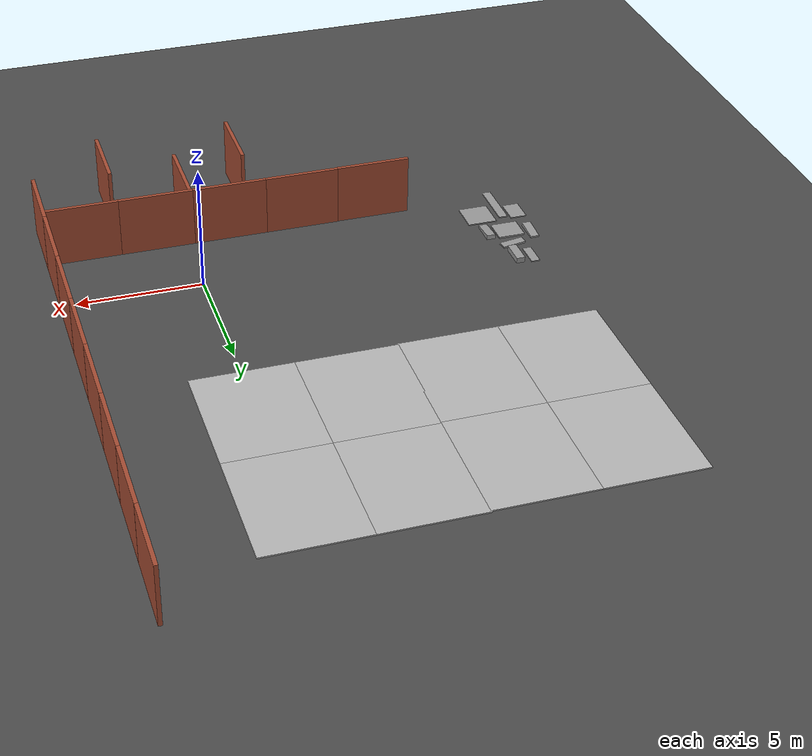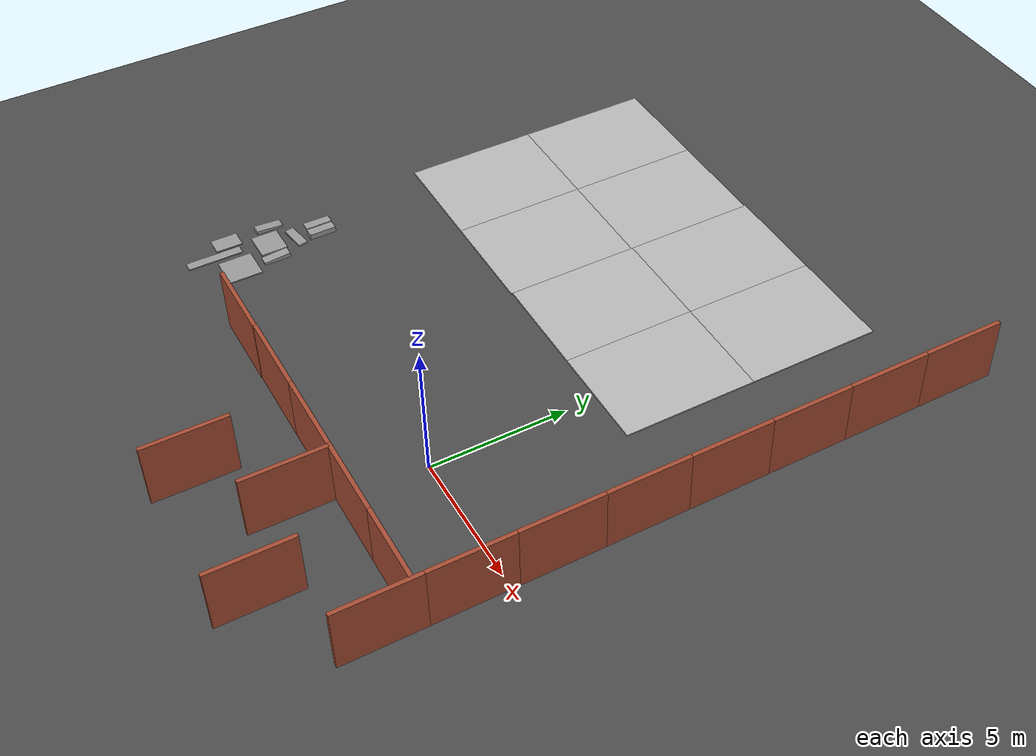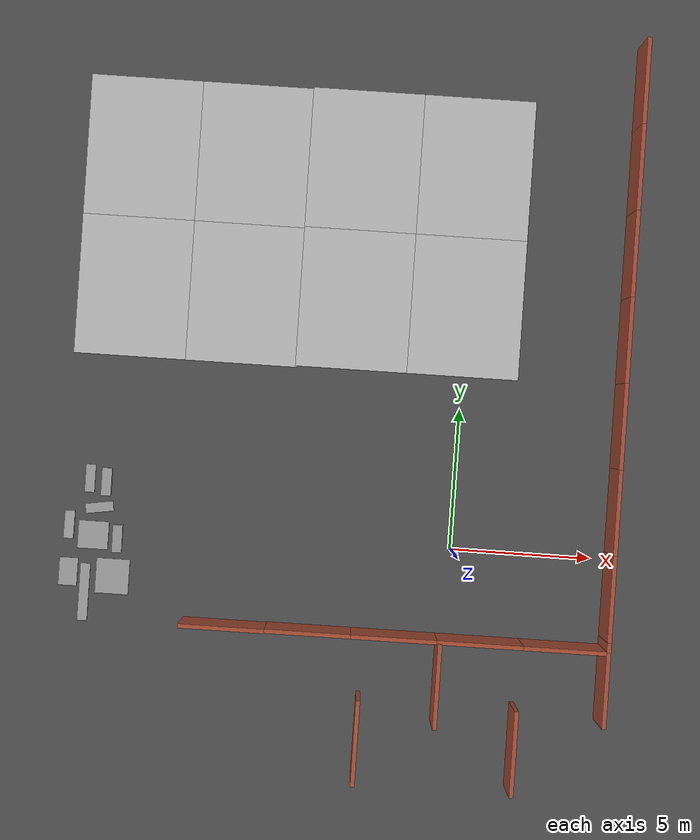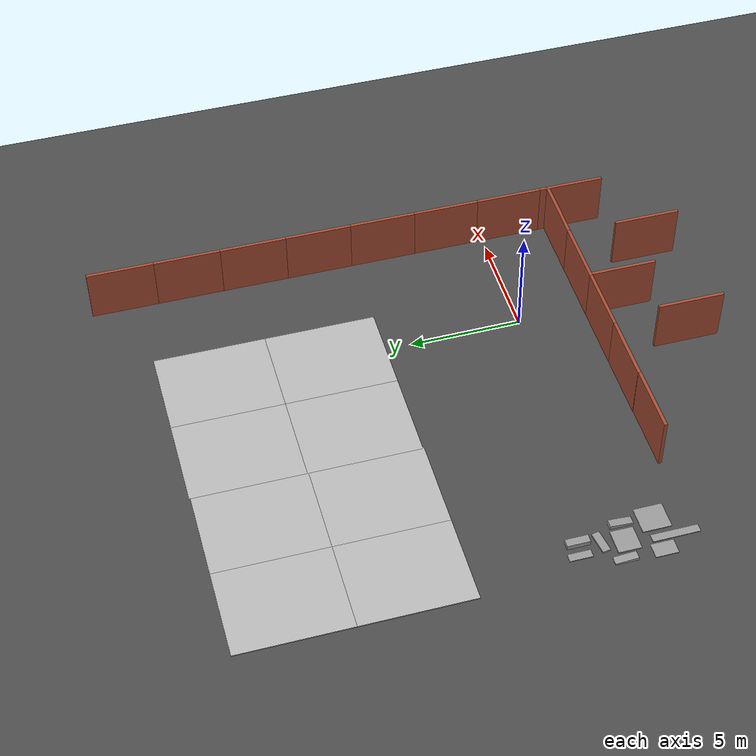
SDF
<sdf version="1.7">
 <world name="default">
  <scene>
   <sky><clouds><speed>5</speed></clouds></sky>
   <ambient>0.4 0.4 0.4 1</ambient>
   <background>0.7 0.7 0.7 1</background>
   <shadows>1</shadows>
  </scene>
  <light name="sun" type="directional">
   <pose>0 0 10 0 -0 0</pose>
   <diffuse>0.8 0.8 0.8 1</diffuse>
   <specular>0.2 0.2 0.2 1</specular>
   <attenuation>
    <range>1000</range>
    <constant>0.9</constant>
    <linear>0.01</linear>
    <quadratic>0.001</quadratic>
   </attenuation>
   <direction>-0.5 0.1 -0.9</direction>
   <spot><inner_angle>0</inner_angle><outer_angle>0</outer_angle><falloff>0</falloff></spot>
  </light>
  <model name="ground_plane">
   <static>1</static>
   <link name="link">
    <collision name="collision">
     <geometry><plane><normal>0 0 1</normal><size>100 100</size></plane></geometry>
     <surface><friction><ode><mu>100</mu><mu2>50</mu2></ode></friction></surface>
    </collision>
    <visual name="visual">
     <cast_shadows>0</cast_shadows>
     <geometry><plane><normal>0 0 1</normal><size>100 100</size></plane></geometry>
     <material>
      <script><uri>file://media/materials/scripts/gazebo.material</uri><name>Gazebo/Grey</name></script>
     </material>
    </visual>
   </link>
  </model>
  <gravity>0 0 -9.8</gravity>
  <magnetic_field>6e-06 2.3e-05 -4.2e-05</magnetic_field>
  <atmosphere type="adiabatic"/>
  <physics name="default_physics" default="0" type="ode">
   <max_step_size>0.01</max_step_size>
   <real_time_factor>1</real_time_factor>
   <real_time_update_rate>100</real_time_update_rate>
  </physics>
  <scene><ambient>0.4 0.4 0.4 1</ambient><background>0.7 0.7 0.7 1</background><shadows>1</shadows></scene>
  <spherical_coordinates>
   <surface_model>EARTH_WGS84</surface_model>
   <latitude_deg>0</latitude_deg>
   <longitude_deg>0</longitude_deg>
   <elevation>0</elevation>
   <heading_deg>0</heading_deg>
  </spherical_coordinates>
  <model name="wall_brick_3m">
   <pose>2.53536 -6.79833 0 0 -0 1.57</pose>
   <link name="Wall_2">
    <collision name="Wall_2_Collision">
     <geometry><box><size>3 0.15 2.5</size></box></geometry>
     <pose>0 0 1.25 0 -0 0</pose>
    </collision>
    <visual name="Wall_2_Visual">
     <pose>0 0 1.25 0 -0 0</pose>
     <geometry><box><size>3 0.15 2.5</size></box></geometry>
     <material>
      <script><uri>file://media/materials/scripts/gazebo.material</uri><name>Gazebo/Bricks</name></script>
      <ambient>1 1 1 1</ambient>
     </material>
     <meta><layer>0</layer></meta>
    </visual>
   </link>
   <static>1</static>
  </model>
  <model name="wall_brick_3m_clone">
   <pose>-0.265232 -4.62667 0 0 -0 1.57</pose>
   <link name="Wall_2">
    <collision name="Wall_2_Collision">
     <geometry><box><size>3 0.15 2.5</size></box></geometry>
     <pose>0 0 1.25 0 -0 0</pose>
    </collision>
    <visual name="Wall_2_Visual">
     <pose>0 0 1.25 0 -0 0</pose>
     <geometry><box><size>3 0.15 2.5</size></box></geometry>
     <material>
      <script><uri>file://media/materials/scripts/gazebo.material</uri><name>Gazebo/Bricks</name></script>
      <ambient>1 1 1 1</ambient>
     </material>
     <meta><layer>0</layer></meta>
    </visual>
   </link>
   <static>1</static>
  </model>
  <model name="wall_brick_3m_clone_clone">
   <pose>-2.96784 -6.78032 0 0 -0 1.57</pose>
   <link name="Wall_2">
    <collision name="Wall_2_Collision">
     <geometry><box><size>3 0.15 2.5</size></box></geometry>
     <pose>0 0 1.25 0 -0 0</pose>
    </collision>
    <visual name="Wall_2_Visual">
     <pose>0 0 1.25 0 -0 0</pose>
     <geometry><box><size>3 0.15 2.5</size></box></geometry>
     <material>
      <script><uri>file://media/materials/scripts/gazebo.material</uri><name>Gazebo/Bricks</name></script>
      <ambient>1 1 1 1</ambient>
     </material>
     <meta><layer>0</layer></meta>
    </visual>
   </link>
   <static>1</static>
  </model>
  <model name="wall_brick_3m_clone_0">
   <pose>5.57817 -4.2114 0 0 -0 1.57</pose>
   <link name="Wall_2">
    <collision name="Wall_2_Collision">
     <geometry><box><size>3 0.15 2.5</size></box></geometry>
     <pose>0 0 1.25 0 -0 0</pose>
    </collision>
    <visual name="Wall_2_Visual">
     <pose>0 0 1.25 0 -0 0</pose>
     <geometry><box><size>3 0.15 2.5</size></box></geometry>
     <material>
      <script><uri>file://media/materials/scripts/gazebo.material</uri><name>Gazebo/Bricks</name></script>
      <ambient>1 1 1 1</ambient>
     </material>
     <meta><layer>0</layer></meta>
    </visual>
   </link>
   <static>1</static>
  </model>
  <model name="wall_brick_3m_clone_1">
   <pose>4.12513 -3.1 0 0 -0 0</pose>
   <link name="Wall_2">
    <collision name="Wall_2_Collision">
     <geometry><box><size>3 0.15 2.5</size></box></geometry>
     <pose>0 0 1.25 0 -0 0</pose>
    </collision>
    <visual name="Wall_2_Visual">
     <pose>0 0 1.25 0 -0 0</pose>
     <geometry><box><size>3 0.15 2.5</size></box></geometry>
     <material>
      <script><uri>file://media/materials/scripts/gazebo.material</uri><name>Gazebo/Bricks</name></script>
      <ambient>1 1 1 1</ambient>
     </material>
     <meta><layer>0</layer></meta>
    </visual>
   </link>
   <static>1</static>
  </model>
  <model name="wall_brick_3m_clone_1_clone">
   <pose>1.12513 -3.1 0 0 -0 0</pose>
   <link name="Wall_2">
    <collision name="Wall_2_Collision">
     <geometry><box><size>3 0.15 2.5</size></box></geometry>
     <pose>0 0 1.25 0 -0 0</pose>
    </collision>
    <visual name="Wall_2_Visual">
     <pose>0 0 1.25 0 -0 0</pose>
     <geometry><box><size>3 0.15 2.5</size></box></geometry>
     <material>
      <script><uri>file://media/materials/scripts/gazebo.material</uri><name>Gazebo/Bricks</name></script>
      <ambient>1 1 1 1</ambient>
     </material>
     <meta><layer>0</layer></meta>
    </visual>
   </link>
   <static>1</static>
  </model>
  <model name="wall_brick_3m_clone_1_clone_0">
   <pose>-1.87487 -3.1 0 0 -0 0</pose>
   <link name="Wall_2">
    <collision name="Wall_2_Collision">
     <geometry><box><size>3 0.15 2.5</size></box></geometry>
     <pose>0 0 1.25 0 -0 0</pose>
    </collision>
    <visual name="Wall_2_Visual">
     <pose>0 0 1.25 0 -0 0</pose>
     <geometry><box><size>3 0.15 2.5</size></box></geometry>
     <material>
      <script><uri>file://media/materials/scripts/gazebo.material</uri><name>Gazebo/Bricks</name></script>
      <ambient>1 1 1 1</ambient>
     </material>
     <meta><layer>0</layer></meta>
    </visual>
   </link>
   <static>1</static>
  </model>
  <model name="wall_brick_3m_clone_1_clone_1">
   <pose>-4.87487 -3.1 0 0 -0 0</pose>
   <link name="Wall_2">
    <collision name="Wall_2_Collision">
     <geometry><box><size>3 0.15 2.5</size></box></geometry>
     <pose>0 0 1.25 0 -0 0</pose>
    </collision>
    <visual name="Wall_2_Visual">
     <pose>0 0 1.25 0 -0 0</pose>
     <geometry><box><size>3 0.15 2.5</size></box></geometry>
     <material>
      <script><uri>file://media/materials/scripts/gazebo.material</uri><name>Gazebo/Bricks</name></script>
      <ambient>1 1 1 1</ambient>
     </material>
     <meta><layer>0</layer></meta>
    </visual>
   </link>
   <static>1</static>
  </model>
  <model name="wall_brick_3m_clone_1_clone_1_clone">
   <pose>-7.87487 -3.11682 0 0 -0 0</pose>
   <link name="Wall_2">
    <collision name="Wall_2_Collision">
     <geometry><box><size>3 0.15 2.5</size></box></geometry>
     <pose>0 0 1.25 0 -0 0</pose>
    </collision>
    <visual name="Wall_2_Visual">
     <pose>0 0 1.25 0 -0 0</pose>
     <geometry><box><size>3 0.15 2.5</size></box></geometry>
     <material>
      <script><uri>file://media/materials/scripts/gazebo.material</uri><name>Gazebo/Bricks</name></script>
      <ambient>1 1 1 1</ambient>
     </material>
     <meta><layer>0</layer></meta>
    </visual>
   </link>
   <static>1</static>
  </model>
  <model name="wall_brick_3m_clone_0_clone">
   <pose>5.57817 -1.21128 0 0 -0 1.57</pose>
   <link name="Wall_2">
    <collision name="Wall_2_Collision">
     <geometry><box><size>3 0.15 2.5</size></box></geometry>
     <pose>0 0 1.25 0 -0 0</pose>
    </collision>
    <visual name="Wall_2_Visual">
     <pose>0 0 1.25 0 -0 0</pose>
     <geometry><box><size>3 0.15 2.5</size></box></geometry>
     <material>
      <script><uri>file://media/materials/scripts/gazebo.material</uri><name>Gazebo/Bricks</name></script>
      <ambient>1 1 1 1</ambient>
     </material>
     <meta><layer>0</layer></meta>
    </visual>
   </link>
   <static>1</static>
  </model>
  <model name="wall_brick_3m_clone_0_clone_clone">
   <pose>5.57817 1.78884 0 0 -0 1.57</pose>
   <link name="Wall_2">
    <collision name="Wall_2_Collision">
     <geometry><box><size>3 0.15 2.5</size></box></geometry>
     <pose>0 0 1.25 0 -0 0</pose>
    </collision>
    <visual name="Wall_2_Visual">
     <pose>0 0 1.25 0 -0 0</pose>
     <geometry><box><size>3 0.15 2.5</size></box></geometry>
     <material>
      <script><uri>file://media/materials/scripts/gazebo.material</uri><name>Gazebo/Bricks</name></script>
      <ambient>1 1 1 1</ambient>
     </material>
     <meta><layer>0</layer></meta>
    </visual>
   </link>
   <static>1</static>
  </model>
  <model name="wall_brick_3m_clone_0_clone_clone_0">
   <pose>5.57817 4.78896 0 0 -0 1.57</pose>
   <link name="Wall_2">
    <collision name="Wall_2_Collision">
     <geometry><box><size>3 0.15 2.5</size></box></geometry>
     <pose>0 0 1.25 0 -0 0</pose>
    </collision>
    <visual name="Wall_2_Visual">
     <pose>0 0 1.25 0 -0 0</pose>
     <geometry><box><size>3 0.15 2.5</size></box></geometry>
     <material>
      <script><uri>file://media/materials/scripts/gazebo.material</uri><name>Gazebo/Bricks</name></script>
      <ambient>1 1 1 1</ambient>
     </material>
     <meta><layer>0</layer></meta>
    </visual>
   </link>
   <static>1</static>
  </model>
  <model name="wall_brick_3m_clone_0_clone_clone_0_clone">
   <pose>5.57817 7.78908 0 0 -0 1.57</pose>
   <link name="Wall_2">
    <collision name="Wall_2_Collision">
     <geometry><box><size>3 0.15 2.5</size></box></geometry>
     <pose>0 0 1.25 0 -0 0</pose>
    </collision>
    <visual name="Wall_2_Visual">
     <pose>0 0 1.25 0 -0 0</pose>
     <geometry><box><size>3 0.15 2.5</size></box></geometry>
     <material>
      <script><uri>file://media/materials/scripts/gazebo.material</uri><name>Gazebo/Bricks</name></script>
      <ambient>1 1 1 1</ambient>
     </material>
     <meta><layer>0</layer></meta>
    </visual>
   </link>
   <static>1</static>
  </model>
  <model name="wall_brick_3m_clone_0_clone_clone_0_clone_clone">
   <pose>5.57817 10.7892 0 0 -0 1.57</pose>
   <link name="Wall_2">
    <collision name="Wall_2_Collision">
     <geometry><box><size>3 0.15 2.5</size></box></geometry>
     <pose>0 0 1.25 0 -0 0</pose>
    </collision>
    <visual name="Wall_2_Visual">
     <pose>0 0 1.25 0 -0 0</pose>
     <geometry><box><size>3 0.15 2.5</size></box></geometry>
     <material>
      <script><uri>file://media/materials/scripts/gazebo.material</uri><name>Gazebo/Bricks</name></script>
      <ambient>1 1 1 1</ambient>
     </material>
     <meta><layer>0</layer></meta>
    </visual>
   </link>
   <static>1</static>
  </model>
  <model name="wall_brick_3m_clone_0_clone_clone_0_clone_clone_0">
   <pose>5.57817 13.7893 0 0 -0 1.57</pose>
   <link name="Wall_2">
    <collision name="Wall_2_Collision">
     <geometry><box><size>3 0.15 2.5</size></box></geometry>
     <pose>0 0 1.25 0 -0 0</pose>
    </collision>
    <visual name="Wall_2_Visual">
     <pose>0 0 1.25 0 -0 0</pose>
     <geometry><box><size>3 0.15 2.5</size></box></geometry>
     <material>
      <script><uri>file://media/materials/scripts/gazebo.material</uri><name>Gazebo/Bricks</name></script>
      <ambient>1 1 1 1</ambient>
     </material>
     <meta><layer>0</layer></meta>
    </visual>
   </link>
   <static>1</static>
  </model>
  <model name="wall_brick_3m_clone_0_clone_clone_0_clone_clone_0_clone">
   <pose>5.57817 16.7894 0 0 -0 1.57</pose>
   <link name="Wall_2">
    <collision name="Wall_2_Collision">
     <geometry><box><size>3 0.15 2.5</size></box></geometry>
     <pose>0 0 1.25 0 -0 0</pose>
    </collision>
    <visual name="Wall_2_Visual">
     <pose>0 0 1.25 0 -0 0</pose>
     <geometry><box><size>3 0.15 2.5</size></box></geometry>
     <material>
      <script><uri>file://media/materials/scripts/gazebo.material</uri><name>Gazebo/Bricks</name></script>
      <ambient>1 1 1 1</ambient>
     </material>
     <meta><layer>0</layer></meta>
    </visual>
   </link>
   <static>1</static>
  </model>
  <model name="asphalt_plane">
   <static>1</static>
   <link name="link">
    <collision name="collision"><geometry><box><size>98.0294 91.5637 0.1</size></box></geometry></collision>
    <visual name="visual">
     <cast_shadows>0</cast_shadows>
     <geometry><box><size>98.0294 91.5637 0.1</size></box></geometry>
     <material>
      <script>
       <uri>model://asphalt_plane/materials/scripts</uri>
       <uri>model://asphalt_plane/materials/textures</uri>
       <name>vrc/asphalt</name>
      </script>
     </material>
    </visual>
   </link>
   <pose>-4.33392 0.897286 0 0 -0 0</pose>
  </model>
  <model name="mud_box">
   <static>1</static>
   <link name="link">
    <collision name="collision"><geometry><box><size>8 10 0.2</size></box></geometry></collision>
    <visual name="visual_1">
     <pose>-2 2.5 0 0 -0 0</pose>
     <cast_shadows>0</cast_shadows>
     <geometry><box><size>4 5 0.2</size></box></geometry>
     <material>
      <script>
       <uri>model://mud_box/materials/scripts</uri>
       <uri>model://mud_box/materials/textures</uri>
       <name>vrc/mud</name>
      </script>
     </material>
    </visual>
    <visual name="visual_2">
     <pose>2 2.5 0 0 -0 0</pose>
     <cast_shadows>0</cast_shadows>
     <geometry><box><size>4 5 0.2</size></box></geometry>
     <material>
      <script>
       <uri>model://mud_box/materials/scripts</uri>
       <uri>model://mud_box/materials/textures</uri>
       <name>vrc/mud</name>
      </script>
     </material>
    </visual>
    <visual name="visual_3">
     <pose>2 -2.5 0 0 -0 0</pose>
     <cast_shadows>0</cast_shadows>
     <geometry><box><size>4 5 0.2</size></box></geometry>
     <material>
      <script>
       <uri>model://mud_box/materials/scripts</uri>
       <uri>model://mud_box/materials/textures</uri>
       <name>vrc/mud</name>
      </script>
     </material>
    </visual>
    <visual name="visual_4">
     <pose>-2 -2.5 0 0 -0 0</pose>
     <cast_shadows>0</cast_shadows>
     <geometry><box><size>4 5 0.2</size></box></geometry>
     <material>
      <script>
       <uri>model://mud_box/materials/scripts</uri>
       <uri>model://mud_box/materials/textures</uri>
       <name>vrc/mud</name>
      </script>
     </material>
    </visual>
   </link>
   <pose>-1.97889 11.186 0 0 -0 0</pose>
  </model>
  <model name="mud_box_clone">
   <static>1</static>
   <link name="link">
    <collision name="collision"><geometry><box><size>8 10 0.2</size></box></geometry></collision>
    <visual name="visual_1">
     <pose>-2 2.5 0 0 -0 0</pose>
     <cast_shadows>0</cast_shadows>
     <geometry><box><size>4 5 0.2</size></box></geometry>
     <material>
      <script>
       <uri>model://mud_box/materials/scripts</uri>
       <uri>model://mud_box/materials/textures</uri>
       <name>vrc/mud</name>
      </script>
     </material>
    </visual>
    <visual name="visual_2">
     <pose>2 2.5 0 0 -0 0</pose>
     <cast_shadows>0</cast_shadows>
     <geometry><box><size>4 5 0.2</size></box></geometry>
     <material>
      <script>
       <uri>model://mud_box/materials/scripts</uri>
       <uri>model://mud_box/materials/textures</uri>
       <name>vrc/mud</name>
      </script>
     </material>
    </visual>
    <visual name="visual_3">
     <pose>2 -2.5 0 0 -0 0</pose>
     <cast_shadows>0</cast_shadows>
     <geometry><box><size>4 5 0.2</size></box></geometry>
     <material>
      <script>
       <uri>model://mud_box/materials/scripts</uri>
       <uri>model://mud_box/materials/textures</uri>
       <name>vrc/mud</name>
      </script>
     </material>
    </visual>
    <visual name="visual_4">
     <pose>-2 -2.5 0 0 -0 0</pose>
     <cast_shadows>0</cast_shadows>
     <geometry><box><size>4 5 0.2</size></box></geometry>
     <material>
      <script>
       <uri>model://mud_box/materials/scripts</uri>
       <uri>model://mud_box/materials/textures</uri>
       <name>vrc/mud</name>
      </script>
     </material>
    </visual>
   </link>
   <pose>-9.92456 11.1339 0 0 -0 0</pose>
  </model>
  <model name="unit_box_clone_2">
   <link name="link">
    <inertial>
     <mass>1</mass>
     <inertia>
      <ixx>0.166667</ixx>
      <ixy>0</ixy>
      <ixz>0</ixz>
      <iyy>0.166667</iyy>
      <iyz>0</iyz>
      <izz>0.166667</izz>
     </inertia>
    </inertial>
    <visual name="visual">
     <geometry><box><size>0.35489 1 0.393854</size></box></geometry>
     <material>
      <script><name>Gazebo/Grey</name><uri>file://media/materials/scripts/gazebo.material</uri></script>
      <shader type="pixel"/>
     </material>
    </visual>
    <collision name="collision">
     <geometry><box><size>0.35489 1 0.393854</size></box></geometry>
     <surface>
      <friction>
       <ode><mu>1</mu><mu2>1</mu2><fdir1>0 0 0</fdir1><slip1>0</slip1><slip2>0</slip2></ode>
       <torsional>
        <coefficient>1</coefficient>
        <patch_radius>0</patch_radius>
        <surface_radius>0</surface_radius>
        <use_patch_radius>1</use_patch_radius>
        <ode><slip>0</slip></ode>
       </torsional>
      </friction>
      <bounce><restitution_coefficient>0</restitution_coefficient><threshold>1e+06</threshold></bounce>
      <contact>
       <collide_without_contact>0</collide_without_contact>
       <collide_without_contact_bitmask>1</collide_without_contact_bitmask>
       <collide_bitmask>1</collide_bitmask>
       <ode>
        <soft_cfm>0</soft_cfm>
        <soft_erp>0.2</soft_erp>
        <kp>1e+13</kp>
        <kd>1</kd>
        <max_vel>0.01</max_vel>
        <min_depth>0</min_depth>
       </ode>
       <bullet>
        <split_impulse>1</split_impulse>
        <split_impulse_penetration_threshold>-0.01</split_impulse_penetration_threshold>
        <soft_cfm>0</soft_cfm>
        <soft_erp>0.2</soft_erp>
        <kp>1e+13</kp>
        <kd>1</kd>
       </bullet>
      </contact>
     </surface>
    </collision>
   </link>
   <static>1</static>
   <pose>-12.4243 1.59397 0.075165 0 -0 0</pose>
  </model>
  <model name="unit_box_clone_2_clone_1">
   <link name="link">
    <inertial>
     <mass>1</mass>
     <inertia>
      <ixx>0.166667</ixx>
      <ixy>0</ixy>
      <ixz>0</ixz>
      <iyy>0.166667</iyy>
      <iyz>0</iyz>
      <izz>0.166667</izz>
     </inertia>
    </inertial>
    <visual name="visual">
     <geometry><box><size>0.35489 1 0.393854</size></box></geometry>
     <material>
      <script><name>Gazebo/Grey</name><uri>file://media/materials/scripts/gazebo.material</uri></script>
      <shader type="pixel"/>
     </material>
    </visual>
    <collision name="collision">
     <geometry><box><size>0.35489 1 0.393854</size></box></geometry>
     <surface>
      <friction>
       <ode><mu>1</mu><mu2>1</mu2><fdir1>0 0 0</fdir1><slip1>0</slip1><slip2>0</slip2></ode>
       <torsional>
        <coefficient>1</coefficient>
        <patch_radius>0</patch_radius>
        <surface_radius>0</surface_radius>
        <use_patch_radius>1</use_patch_radius>
        <ode><slip>0</slip></ode>
       </torsional>
      </friction>
      <bounce><restitution_coefficient>0</restitution_coefficient><threshold>1e+06</threshold></bounce>
      <contact>
       <collide_without_contact>0</collide_without_contact>
       <collide_without_contact_bitmask>1</collide_without_contact_bitmask>
       <collide_bitmask>1</collide_bitmask>
       <ode>
        <soft_cfm>0</soft_cfm>
        <soft_erp>0.2</soft_erp>
        <kp>1e+13</kp>
        <kd>1</kd>
        <max_vel>0.01</max_vel>
        <min_depth>0</min_depth>
       </ode>
       <bullet>
        <split_impulse>1</split_impulse>
        <split_impulse_penetration_threshold>-0.01</split_impulse_penetration_threshold>
        <soft_cfm>0</soft_cfm>
        <soft_erp>0.2</soft_erp>
        <kp>1e+13</kp>
        <kd>1</kd>
       </bullet>
      </contact>
     </surface>
    </collision>
   </link>
   <static>1</static>
   <pose>-13.0302 1.6813 -0.105743 0 -0 0</pose>
  </model>
  <model name="unit_box_clone_2_clone_1_clone">
   <link name="link">
    <inertial>
     <mass>1</mass>
     <inertia>
      <ixx>0.166667</ixx>
      <ixy>0</ixy>
      <ixz>0</ixz>
      <iyy>0.166667</iyy>
      <iyz>0</iyz>
      <izz>0.166667</izz>
     </inertia>
    </inertial>
    <visual name="visual">
     <geometry><box><size>0.35489 1 0.533089</size></box></geometry>
     <material>
      <script><name>Gazebo/Grey</name><uri>file://media/materials/scripts/gazebo.material</uri></script>
      <shader type="pixel"/>
     </material>
    </visual>
    <collision name="collision">
     <geometry><box><size>0.35489 1 0.533089</size></box></geometry>
     <surface>
      <friction>
       <ode><mu>1</mu><mu2>1</mu2><fdir1>0 0 0</fdir1><slip1>0</slip1><slip2>0</slip2></ode>
       <torsional>
        <coefficient>1</coefficient>
        <patch_radius>0</patch_radius>
        <surface_radius>0</surface_radius>
        <use_patch_radius>1</use_patch_radius>
        <ode><slip>0</slip></ode>
       </torsional>
      </friction>
      <bounce><restitution_coefficient>0</restitution_coefficient><threshold>1e+06</threshold></bounce>
      <contact>
       <collide_without_contact>0</collide_without_contact>
       <collide_without_contact_bitmask>1</collide_without_contact_bitmask>
       <collide_bitmask>1</collide_bitmask>
       <ode>
        <soft_cfm>0</soft_cfm>
        <soft_erp>0.2</soft_erp>
        <kp>1e+13</kp>
        <kd>1</kd>
        <max_vel>0.01</max_vel>
        <min_depth>0</min_depth>
       </ode>
       <bullet>
        <split_impulse>1</split_impulse>
        <split_impulse_penetration_threshold>-0.01</split_impulse_penetration_threshold>
        <soft_cfm>0</soft_cfm>
        <soft_erp>0.2</soft_erp>
        <kp>1e+13</kp>
        <kd>1</kd>
       </bullet>
      </contact>
     </surface>
    </collision>
   </link>
   <static>1</static>
   <pose>-13.6652 -0.034523 -0.105743 -0.072503 0 0</pose>
  </model>
  <model name="unit_box_clone_2_clone_1_clone_0">
   <link name="link">
    <inertial>
     <mass>1</mass>
     <inertia>
      <ixx>0.166667</ixx>
      <ixy>0</ixy>
      <ixz>0</ixz>
      <iyy>0.166667</iyy>
      <iyz>0</iyz>
      <izz>0.166667</izz>
     </inertia>
    </inertial>
    <visual name="visual">
     <geometry><box><size>0.35489 1 0.459044</size></box></geometry>
     <material>
      <script><name>Gazebo/Grey</name><uri>file://media/materials/scripts/gazebo.material</uri></script>
      <shader type="pixel"/>
     </material>
    </visual>
    <collision name="collision">
     <geometry><box><size>0.35489 1 0.459044</size></box></geometry>
     <surface>
      <friction>
       <ode><mu>1</mu><mu2>1</mu2><fdir1>0 0 0</fdir1><slip1>0</slip1><slip2>0</slip2></ode>
       <torsional>
        <coefficient>1</coefficient>
        <patch_radius>0</patch_radius>
        <surface_radius>0</surface_radius>
        <use_patch_radius>1</use_patch_radius>
        <ode><slip>0</slip></ode>
       </torsional>
      </friction>
      <bounce><restitution_coefficient>0</restitution_coefficient><threshold>1e+06</threshold></bounce>
      <contact>
       <collide_without_contact>0</collide_without_contact>
       <collide_without_contact_bitmask>1</collide_without_contact_bitmask>
       <collide_bitmask>1</collide_bitmask>
       <ode>
        <soft_cfm>0</soft_cfm>
        <soft_erp>0.2</soft_erp>
        <kp>1e+13</kp>
        <kd>1</kd>
        <max_vel>0.01</max_vel>
        <min_depth>0</min_depth>
       </ode>
       <bullet>
        <split_impulse>1</split_impulse>
        <split_impulse_penetration_threshold>-0.01</split_impulse_penetration_threshold>
        <soft_cfm>0</soft_cfm>
        <soft_erp>0.2</soft_erp>
        <kp>1e+13</kp>
        <kd>1</kd>
       </bullet>
      </contact>
     </surface>
    </collision>
   </link>
   <static>1</static>
   <pose>-11.92 -0.399344 -0.04215 0.086289 -0 0</pose>
  </model>
  <model name="unit_box_clone_2_clone_1_clone_1">
   <link name="link">
    <inertial>
     <mass>1</mass>
     <inertia>
      <ixx>0.166667</ixx>
      <ixy>0</ixy>
      <ixz>0</ixz>
      <iyy>0.166667</iyy>
      <iyz>0</iyz>
      <izz>0.166667</izz>
     </inertia>
    </inertial>
    <visual name="visual">
     <geometry><box><size>1.08883 1 0.441766</size></box></geometry>
     <material>
      <script><name>Gazebo/Grey</name><uri>file://media/materials/scripts/gazebo.material</uri></script>
      <shader type="pixel"/>
     </material>
    </visual>
    <collision name="collision">
     <geometry><box><size>1.08883 1 0.441766</size></box></geometry>
     <surface>
      <friction>
       <ode><mu>1</mu><mu2>1</mu2><fdir1>0 0 0</fdir1><slip1>0</slip1><slip2>0</slip2></ode>
       <torsional>
        <coefficient>1</coefficient>
        <patch_radius>0</patch_radius>
        <surface_radius>0</surface_radius>
        <use_patch_radius>1</use_patch_radius>
        <ode><slip>0</slip></ode>
       </torsional>
      </friction>
      <bounce><restitution_coefficient>0</restitution_coefficient><threshold>1e+06</threshold></bounce>
      <contact>
       <collide_without_contact>0</collide_without_contact>
       <collide_without_contact_bitmask>1</collide_without_contact_bitmask>
       <collide_bitmask>1</collide_bitmask>
       <ode>
        <soft_cfm>0</soft_cfm>
        <soft_erp>0.2</soft_erp>
        <kp>1e+13</kp>
        <kd>1</kd>
        <max_vel>0.01</max_vel>
        <min_depth>0</min_depth>
       </ode>
       <bullet>
        <split_impulse>1</split_impulse>
        <split_impulse_penetration_threshold>-0.01</split_impulse_penetration_threshold>
        <soft_cfm>0</soft_cfm>
        <soft_erp>0.2</soft_erp>
        <kp>1e+13</kp>
        <kd>1</kd>
       </bullet>
      </contact>
     </surface>
    </collision>
   </link>
   <static>1</static>
   <pose>-12.789 -0.336189 -0.105743 0 -0 0</pose>
  </model>
  <model name="unit_box_clone_2_clone_1_clone_2">
   <link name="link">
    <inertial>
     <mass>1</mass>
     <inertia>
      <ixx>0.166667</ixx>
      <ixy>0</ixy>
      <ixz>0</ixz>
      <iyy>0.166667</iyy>
      <iyz>0</iyz>
      <izz>0.166667</izz>
     </inertia>
    </inertial>
    <visual name="visual">
     <geometry><box><size>1.19567 1.25646 0.393854</size></box></geometry>
     <material>
      <script><name>Gazebo/Grey</name><uri>file://media/materials/scripts/gazebo.material</uri></script>
      <shader type="pixel"/>
     </material>
    </visual>
    <collision name="collision">
     <geometry><box><size>1.19567 1.25646 0.393854</size></box></geometry>
     <surface>
      <friction>
       <ode><mu>1</mu><mu2>1</mu2><fdir1>0 0 0</fdir1><slip1>0</slip1><slip2>0</slip2></ode>
       <torsional>
        <coefficient>1</coefficient>
        <patch_radius>0</patch_radius>
        <surface_radius>0</surface_radius>
        <use_patch_radius>1</use_patch_radius>
        <ode><slip>0</slip></ode>
       </torsional>
      </friction>
      <bounce><restitution_coefficient>0</restitution_coefficient><threshold>1e+06</threshold></bounce>
      <contact>
       <collide_without_contact>0</collide_without_contact>
       <collide_without_contact_bitmask>1</collide_without_contact_bitmask>
       <collide_bitmask>1</collide_bitmask>
       <ode>
        <soft_cfm>0</soft_cfm>
        <soft_erp>0.2</soft_erp>
        <kp>1e+13</kp>
        <kd>1</kd>
        <max_vel>0.01</max_vel>
        <min_depth>0</min_depth>
       </ode>
       <bullet>
        <split_impulse>1</split_impulse>
        <split_impulse_penetration_threshold>-0.01</split_impulse_penetration_threshold>
        <soft_cfm>0</soft_cfm>
        <soft_erp>0.2</soft_erp>
        <kp>1e+13</kp>
        <kd>1</kd>
       </bullet>
      </contact>
     </surface>
    </collision>
   </link>
   <static>1</static>
   <pose>-12.0137 -1.77303 -0.105743 0 -0 0</pose>
  </model>
  <model name="unit_box_clone_2_clone_1_clone_3">
   <link name="link">
    <inertial>
     <mass>1</mass>
     <inertia>
      <ixx>0.166667</ixx>
      <ixy>0</ixy>
      <ixz>0</ixz>
      <iyy>0.166667</iyy>
      <iyz>0</iyz>
      <izz>0.166667</izz>
     </inertia>
    </inertial>
    <visual name="visual">
     <geometry><box><size>0.666153 1 0.393854</size></box></geometry>
     <material>
      <script><name>Gazebo/Grey</name><uri>file://media/materials/scripts/gazebo.material</uri></script>
      <shader type="pixel"/>
     </material>
    </visual>
    <collision name="collision">
     <geometry><box><size>0.666153 1 0.393854</size></box></geometry>
     <surface>
      <friction>
       <ode><mu>1</mu><mu2>1</mu2><fdir1>0 0 0</fdir1><slip1>0</slip1><slip2>0</slip2></ode>
       <torsional>
        <coefficient>1</coefficient>
        <patch_radius>0</patch_radius>
        <surface_radius>0</surface_radius>
        <use_patch_radius>1</use_patch_radius>
        <ode><slip>0</slip></ode>
       </torsional>
      </friction>
      <bounce><restitution_coefficient>0</restitution_coefficient><threshold>1e+06</threshold></bounce>
      <contact>
       <collide_without_contact>0</collide_without_contact>
       <collide_without_contact_bitmask>1</collide_without_contact_bitmask>
       <collide_bitmask>1</collide_bitmask>
       <ode>
        <soft_cfm>0</soft_cfm>
        <soft_erp>0.2</soft_erp>
        <kp>1e+13</kp>
        <kd>1</kd>
        <max_vel>0.01</max_vel>
        <min_depth>0</min_depth>
       </ode>
       <bullet>
        <split_impulse>1</split_impulse>
        <split_impulse_penetration_threshold>-0.01</split_impulse_penetration_threshold>
        <soft_cfm>0</soft_cfm>
        <soft_erp>0.2</soft_erp>
        <kp>1e+13</kp>
        <kd>1</kd>
       </bullet>
      </contact>
     </surface>
    </collision>
   </link>
   <static>1</static>
   <pose>-13.6033 -1.70085 -0.105743 0 -0 0</pose>
  </model>
  <model name="unit_box_clone_2_clone_1_clone_4">
   <link name="link">
    <inertial>
     <mass>1</mass>
     <inertia>
      <ixx>0.166667</ixx>
      <ixy>0</ixy>
      <ixz>0</ixz>
      <iyy>0.166667</iyy>
      <iyz>0</iyz>
      <izz>0.166667</izz>
     </inertia>
    </inertial>
    <visual name="visual">
     <geometry><box><size>0.35489 2.0571 0.393854</size></box></geometry>
     <material>
      <script><name>Gazebo/Grey</name><uri>file://media/materials/scripts/gazebo.material</uri></script>
      <shader type="pixel"/>
     </material>
    </visual>
    <collision name="collision">
     <geometry><box><size>0.35489 2.0571 0.393854</size></box></geometry>
     <surface>
      <friction>
       <ode><mu>1</mu><mu2>1</mu2><fdir1>0 0 0</fdir1><slip1>0</slip1><slip2>0</slip2></ode>
       <torsional>
        <coefficient>1</coefficient>
        <patch_radius>0</patch_radius>
        <surface_radius>0</surface_radius>
        <use_patch_radius>1</use_patch_radius>
        <ode><slip>0</slip></ode>
       </torsional>
      </friction>
      <bounce><restitution_coefficient>0</restitution_coefficient><threshold>1e+06</threshold></bounce>
      <contact>
       <collide_without_contact>0</collide_without_contact>
       <collide_without_contact_bitmask>1</collide_without_contact_bitmask>
       <collide_bitmask>1</collide_bitmask>
       <ode>
        <soft_cfm>0</soft_cfm>
        <soft_erp>0.2</soft_erp>
        <kp>1e+13</kp>
        <kd>1</kd>
        <max_vel>0.01</max_vel>
        <min_depth>0</min_depth>
       </ode>
       <bullet>
        <split_impulse>1</split_impulse>
        <split_impulse_penetration_threshold>-0.01</split_impulse_penetration_threshold>
        <soft_cfm>0</soft_cfm>
        <soft_erp>0.2</soft_erp>
        <kp>1e+13</kp>
        <kd>1</kd>
       </bullet>
      </contact>
     </surface>
    </collision>
   </link>
   <static>1</static>
   <pose>-12.9994 -2.39619 -0.105743 0 -0 0</pose>
  </model>
  <model name="unit_box_clone_2_clone_1_clone_clone">
   <link name="link">
    <inertial>
     <mass>1</mass>
     <inertia>
      <ixx>0.166667</ixx>
      <ixy>0</ixy>
      <ixz>0</ixz>
      <iyy>0.166667</iyy>
      <iyz>0</iyz>
      <izz>0.166667</izz>
     </inertia>
    </inertial>
    <visual name="visual">
     <geometry><box><size>0.35489 1 0.15855</size></box></geometry>
     <material>
      <script><name>Gazebo/Grey</name><uri>file://media/materials/scripts/gazebo.material</uri></script>
      <shader type="pixel"/>
     </material>
    </visual>
    <collision name="collision">
     <geometry><box><size>0.35489 1 0.15855</size></box></geometry>
     <surface>
      <friction>
       <ode><mu>1</mu><mu2>1</mu2><fdir1>0 0 0</fdir1><slip1>0</slip1><slip2>0</slip2></ode>
       <torsional>
        <coefficient>1</coefficient>
        <patch_radius>0</patch_radius>
        <surface_radius>0</surface_radius>
        <use_patch_radius>1</use_patch_radius>
        <ode><slip>0</slip></ode>
       </torsional>
      </friction>
      <bounce><restitution_coefficient>0</restitution_coefficient><threshold>1e+06</threshold></bounce>
      <contact>
       <collide_without_contact>0</collide_without_contact>
       <collide_without_contact_bitmask>1</collide_without_contact_bitmask>
       <collide_bitmask>1</collide_bitmask>
       <ode>
        <soft_cfm>0</soft_cfm>
        <soft_erp>0.2</soft_erp>
        <kp>1e+13</kp>
        <kd>1</kd>
        <max_vel>0.01</max_vel>
        <min_depth>0</min_depth>
       </ode>
       <bullet>
        <split_impulse>1</split_impulse>
        <split_impulse_penetration_threshold>-0.01</split_impulse_penetration_threshold>
        <soft_cfm>0</soft_cfm>
        <soft_erp>0.2</soft_erp>
        <kp>1e+13</kp>
        <kd>1</kd>
       </bullet>
      </contact>
     </surface>
    </collision>
   </link>
   <static>1</static>
   <pose>-12.6295 0.664076 0.040324 -0.015054 0.009951 -1.41461</pose>
  </model>
 </world>
</sdf>
